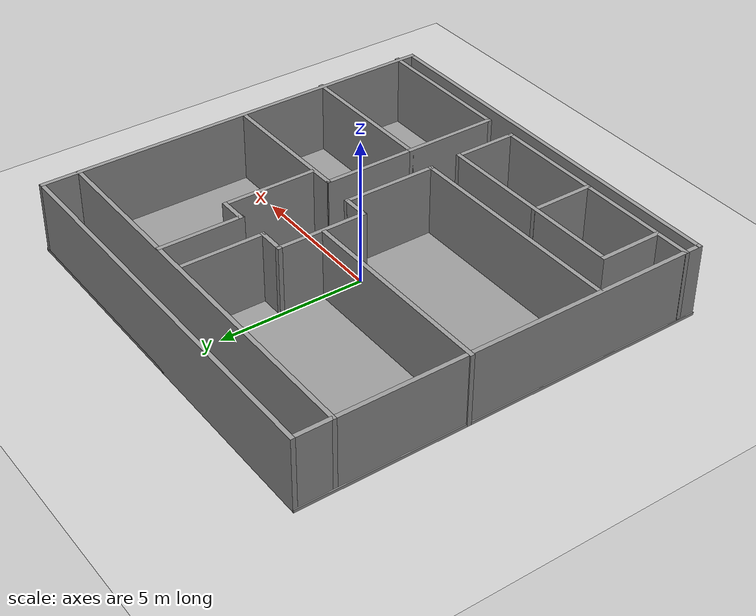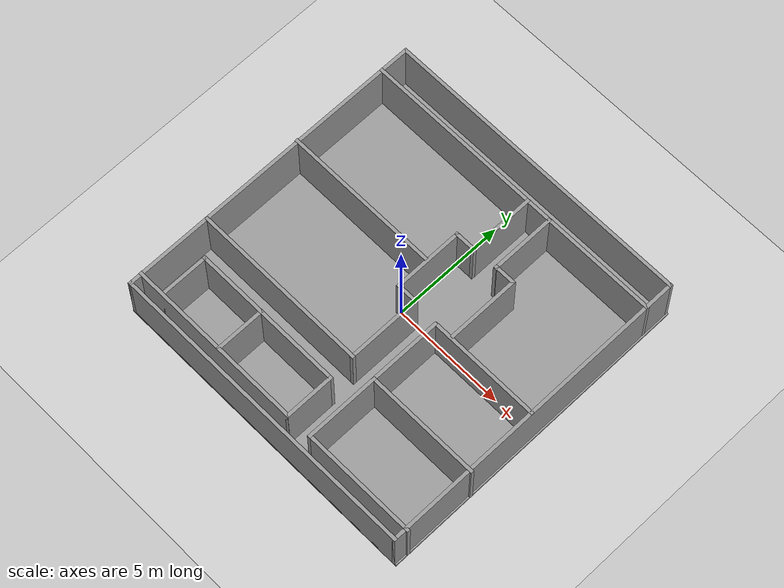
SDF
<sdf version='1.4'>
  <world name='default'>
    <!-- A global light source -->
    <include>
      <uri>model://sun</uri>
    </include>

    <!-- A ground plane -->
    <include>
      <uri>model://ground_plane</uri>
    </include>

    <physics type="ode">
      <real_time_update_rate>1000.0</real_time_update_rate>
      <max_step_size>0.001</max_step_size>
      <real_time_factor>1</real_time_factor>
      <ode>
        <solver>
          <type>quick</type>
          <iters>150</iters>
          <precon_iters>0</precon_iters>
          <sor>1.400000</sor>
          <use_dynamic_moi_rescaling>1</use_dynamic_moi_rescaling>
        </solver>
        <constraints>
          <cfm>0.00001</cfm>
          <erp>0.2</erp>
          <contact_max_correcting_vel>2000.000000</contact_max_correcting_vel>
          <contact_surface_layer>0.01000</contact_surface_layer>
        </constraints>
      </ode>
    </physics>

    <!-- Load world -->
    <include>
      <uri>model://Cedri</uri>
    </include>

    <scene>
      <ambient>0.4 0.4 0.4 1</ambient>
      <background>0.7 0.7 0.7 1</background>
      <shadows>true</shadows>
    </scene>

    <gui fullscreen='0'>
      <camera name='user_camera'>
        <pose>0.8 0.0 12.0 0 1.5708 0</pose>
        <view_controller>orbit</view_controller>
      </camera>
    </gui>
  </world>
</sdf>

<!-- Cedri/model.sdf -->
<sdf version='1.7'>
  <model name='Cedri'>
    <pose>-0.021501 -0.006685 0 0 -0 0</pose>
    <link name='Floor_1'>
      <collision name='Floor_1_Collision'>
        <geometry>
          <box>
            <size>14.0992 14.2194 0.1</size>
          </box>
        </geometry>
        <pose>0 0 0.05 0 -0 0</pose>
      </collision>
      <visual name='Floor_1_Visual'>
        <pose>0 0 0.05 0 -0 0</pose>
        <geometry>
          <box>
            <size>14.0992 14.2194 0.1</size>
          </box>
        </geometry>
        <material>
          <script>
            <uri>file://media/materials/scripts/gazebo.material</uri>
            <name>Gazebo/Grey</name>
          </script>
          <ambient>1 1 1 1</ambient>
        </material>
        <meta>
          <layer>0</layer>
        </meta>
      </visual>
      <pose>-0 0 0 0 -0 0</pose>
    </link>
    <link name='Wall_13'>
      <collision name='Wall_13_Collision'>
        <geometry>
          <box>
            <size>14.2194 0.15 2.5</size>
          </box>
        </geometry>
        <pose>0 0 1.25 0 -0 0</pose>
      </collision>
      <visual name='Wall_13_Visual'>
        <pose>0 0 1.25 0 -0 0</pose>
        <geometry>
          <box>
            <size>14.2194 0.15 2.5</size>
          </box>
        </geometry>
        <material>
          <script>
            <uri>file://media/materials/scripts/gazebo.material</uri>
            <name>Gazebo/Grey</name>
          </script>
          <ambient>1 1 1 1</ambient>
        </material>
        <meta>
          <layer>0</layer>
        </meta>
      </visual>
      <pose>-6.93808 0 0 0 -0 -1.5708</pose>
    </link>
    <link name='Wall_14'>
      <collision name='Wall_14_Collision'>
        <geometry>
          <box>
            <size>14 0.15 2.5</size>
          </box>
        </geometry>
        <pose>0 0 1.25 0 -0 0</pose>
      </collision>
      <visual name='Wall_14_Visual'>
        <pose>0 0 1.25 0 -0 0</pose>
        <geometry>
          <box>
            <size>14 0.15 2.5</size>
          </box>
        </geometry>
        <material>
          <script>
            <uri>file://media/materials/scripts/gazebo.material</uri>
            <name>Gazebo/Grey</name>
          </script>
          <ambient>1 1 1 1</ambient>
        </material>
        <meta>
          <layer>0</layer>
        </meta>
      </visual>
      <pose>-0.013079 -7.0347 0 0 -0 0</pose>
    </link>
    <link name='Wall_15'>
      <collision name='Wall_15_Collision'>
        <geometry>
          <box>
            <size>14.2194 0.15 2.5</size>
          </box>
        </geometry>
        <pose>0 0 1.25 0 -0 0</pose>
      </collision>
      <visual name='Wall_15_Visual'>
        <pose>0 0 1.25 0 -0 0</pose>
        <geometry>
          <box>
            <size>14.2194 0.15 2.5</size>
          </box>
        </geometry>
        <material>
          <script>
            <uri>file://media/materials/scripts/gazebo.material</uri>
            <name>Gazebo/Grey</name>
          </script>
          <ambient>1 1 1 1</ambient>
        </material>
        <meta>
          <layer>0</layer>
        </meta>
      </visual>
      <pose>6.91192 0 0 0 -0 1.5708</pose>
    </link>
    <link name='Wall_16'>
      <collision name='Wall_16_Collision'>
        <geometry>
          <box>
            <size>14 0.15 2.5</size>
          </box>
        </geometry>
        <pose>0 0 1.25 0 -0 0</pose>
      </collision>
      <visual name='Wall_16_Visual'>
        <pose>0 0 1.25 0 -0 0</pose>
        <geometry>
          <box>
            <size>14 0.15 2.5</size>
          </box>
        </geometry>
        <material>
          <script>
            <uri>file://media/materials/scripts/gazebo.material</uri>
            <name>Gazebo/Grey</name>
          </script>
          <ambient>1 1 1 1</ambient>
        </material>
        <meta>
          <layer>0</layer>
        </meta>
      </visual>
      <pose>-0.013079 7.0347 0 0 -0 3.14159</pose>
    </link>
    <link name='Wall_18'>
      <collision name='Wall_18_Collision'>
        <geometry>
          <box>
            <size>14 0.15 2.5</size>
          </box>
        </geometry>
        <pose>0 0 1.25 0 -0 0</pose>
      </collision>
      <visual name='Wall_18_Visual'>
        <pose>0 0 1.25 0 -0 0</pose>
        <geometry>
          <box>
            <size>14 0.15 2.5</size>
          </box>
        </geometry>
        <material>
          <script>
            <uri>file://media/materials/scripts/gazebo.material</uri>
            <name>Gazebo/Grey</name>
          </script>
          <ambient>1 1 1 1</ambient>
        </material>
        <meta>
          <layer>0</layer>
        </meta>
      </visual>
      <pose>-0.013079 5.78058 0 0 -0 0</pose>
    </link>
    <link name='Wall_21'>
      <collision name='Wall_21_Collision'>
        <geometry>
          <box>
            <size>3 0.15 2.5</size>
          </box>
        </geometry>
        <pose>0 0 1.25 0 -0 0</pose>
      </collision>
      <visual name='Wall_21_Visual'>
        <pose>0 0 1.25 0 -0 0</pose>
        <geometry>
          <box>
            <size>3 0.15 2.5</size>
          </box>
        </geometry>
        <material>
          <script>
            <uri>file://media/materials/scripts/gazebo.material</uri>
            <name>Gazebo/Grey</name>
          </script>
          <ambient>1 1 1 1</ambient>
        </material>
        <meta>
          <layer>0</layer>
        </meta>
      </visual>
      <pose>0.838036 4.34811 0 0 -0 -1.5708</pose>
    </link>
    <link name='Wall_22'>
      <collision name='Wall_22_Collision'>
        <geometry>
          <box>
            <size>1 0.15 2.5</size>
          </box>
        </geometry>
        <pose>0 0 1.25 0 -0 0</pose>
      </collision>
      <visual name='Wall_22_Visual'>
        <pose>0 0 1.25 0 -0 0</pose>
        <geometry>
          <box>
            <size>1 0.15 2.5</size>
          </box>
        </geometry>
        <material>
          <script>
            <uri>file://media/materials/scripts/gazebo.material</uri>
            <name>Gazebo/Grey</name>
          </script>
          <ambient>1 1 1 1</ambient>
        </material>
        <meta>
          <layer>0</layer>
        </meta>
      </visual>
      <pose>0.413036 2.92312 0 0 -0 3.14159</pose>
    </link>
    <link name='Wall_23'>
      <collision name='Wall_23_Collision'>
        <geometry>
          <box>
            <size>3.15276 0.15 2.5</size>
          </box>
        </geometry>
        <pose>0 0 1.25 0 -0 0</pose>
      </collision>
      <visual name='Wall_23_Visual'>
        <pose>0 0 1.25 0 -0 0</pose>
        <geometry>
          <box>
            <size>3.15276 0.15 2.5</size>
          </box>
        </geometry>
        <material>
          <script>
            <uri>file://media/materials/scripts/gazebo.material</uri>
            <name>Gazebo/Grey</name>
          </script>
          <ambient>1 1 1 1</ambient>
        </material>
        <meta>
          <layer>0</layer>
        </meta>
      </visual>
      <pose>-0.011964 1.42181 0 0 -0 -1.5708</pose>
    </link>
    <link name='Wall_24'>
      <collision name='Wall_24_Collision'>
        <geometry>
          <box>
            <size>1 0.15 2.5</size>
          </box>
        </geometry>
        <pose>0 0 1.25 0 -0 0</pose>
      </collision>
      <visual name='Wall_24_Visual'>
        <pose>0 0 1.25 0 -0 0</pose>
        <geometry>
          <box>
            <size>1 0.15 2.5</size>
          </box>
        </geometry>
        <material>
          <script>
            <uri>file://media/materials/scripts/gazebo.material</uri>
            <name>Gazebo/Grey</name>
          </script>
          <ambient>1 1 1 1</ambient>
        </material>
        <meta>
          <layer>0</layer>
        </meta>
      </visual>
      <pose>0.413036 -0.07949 0 0 -0 0</pose>
    </link>
    <link name='Wall_26'>
      <collision name='Wall_26_Collision'>
        <geometry>
          <box>
            <size>3.31585 0.15 2.5</size>
          </box>
        </geometry>
        <pose>0 0 1.25 0 -0 0</pose>
      </collision>
      <visual name='Wall_26_Visual'>
        <pose>0 0 1.25 0 -0 0</pose>
        <geometry>
          <box>
            <size>3.31585 0.15 2.5</size>
          </box>
        </geometry>
        <material>
          <script>
            <uri>file://media/materials/scripts/gazebo.material</uri>
            <name>Gazebo/Grey</name>
          </script>
          <ambient>1 1 1 1</ambient>
        </material>
        <meta>
          <layer>0</layer>
        </meta>
      </visual>
      <pose>0.838036 -1.66234 0 0 -0 -1.5708</pose>
    </link>
    <link name='Wall_27'>
      <collision name='Wall_27_Collision'>
        <geometry>
          <box>
            <size>7.9 0.15 2.5</size>
          </box>
        </geometry>
        <pose>0 0 1.25 0 -0 0</pose>
      </collision>
      <visual name='Wall_27_Visual'>
        <pose>0 0 1.25 0 -0 0</pose>
        <geometry>
          <box>
            <size>7.9 0.15 2.5</size>
          </box>
        </geometry>
        <material>
          <script>
            <uri>file://media/materials/scripts/gazebo.material</uri>
            <name>Gazebo/Grey</name>
          </script>
          <ambient>1 1 1 1</ambient>
        </material>
        <meta>
          <layer>0</layer>
        </meta>
      </visual>
      <pose>-3.03696 -3.2452 0 0 -0 3.14159</pose>
    </link>
    <link name='Wall_29'>
      <collision name='Wall_29_Collision'>
        <geometry>
          <box>
            <size>7 0.15 2.5</size>
          </box>
        </geometry>
        <pose>0 0 1.25 0 -0 0</pose>
      </collision>
      <visual name='Wall_29_Visual'>
        <pose>0 0 1.25 0 -0 0</pose>
        <geometry>
          <box>
            <size>7 0.15 2.5</size>
          </box>
        </geometry>
        <material>
          <script>
            <uri>file://media/materials/scripts/gazebo.material</uri>
            <name>Gazebo/Grey</name>
          </script>
          <ambient>1 1 1 1</ambient>
        </material>
        <meta>
          <layer>0</layer>
        </meta>
      </visual>
      <pose>-3.54961 1.38625 0 0 -0 0</pose>
    </link>
    <link name='Wall_32'>
      <collision name='Wall_32_Collision'>
        <geometry>
          <box>
            <size>8 0.15 2.5</size>
          </box>
        </geometry>
        <pose>0 0 1.25 0 -0 0</pose>
      </collision>
      <visual name='Wall_32_Visual'>
        <pose>0 0 1.25 0 -0 0</pose>
        <geometry>
          <box>
            <size>8 0.15 2.5</size>
          </box>
        </geometry>
        <material>
          <script>
            <uri>file://media/materials/scripts/gazebo.material</uri>
            <name>Gazebo/Grey</name>
          </script>
          <ambient>1 1 1 1</ambient>
        </material>
        <meta>
          <layer>0</layer>
        </meta>
      </visual>
      <pose>-3.02648 -6.50129 0 0 -0 0</pose>
    </link>
    <link name='Wall_33'>
      <collision name='Wall_33_Collision'>
        <geometry>
          <box>
            <size>2.25 0.15 2.5</size>
          </box>
        </geometry>
        <pose>0 0 1.25 0 -0 0</pose>
      </collision>
      <visual name='Wall_33_Visual'>
        <pose>0 0 1.25 0 -0 0</pose>
        <geometry>
          <box>
            <size>2.25 0.15 2.5</size>
          </box>
        </geometry>
        <material>
          <script>
            <uri>file://media/materials/scripts/gazebo.material</uri>
            <name>Gazebo/Grey</name>
          </script>
          <ambient>1 1 1 1</ambient>
        </material>
        <meta>
          <layer>0</layer>
        </meta>
      </visual>
      <pose>0.898517 -5.45129 0 0 -0 1.5708</pose>
    </link>
    <link name='Wall_34'>
      <collision name='Wall_34_Collision'>
        <geometry>
          <box>
            <size>6.84252 0.15 2.5</size>
          </box>
        </geometry>
        <pose>0 0 1.25 0 -0 0</pose>
      </collision>
      <visual name='Wall_34_Visual'>
        <pose>0 0 1.25 0 -0 0</pose>
        <geometry>
          <box>
            <size>6.84252 0.15 2.5</size>
          </box>
        </geometry>
        <material>
          <script>
            <uri>file://media/materials/scripts/gazebo.material</uri>
            <name>Gazebo/Grey</name>
          </script>
          <ambient>1 1 1 1</ambient>
        </material>
        <meta>
          <layer>0</layer>
        </meta>
      </visual>
      <pose>-2.44774 -4.40129 0 0 -0 3.14159</pose>
    </link>
    <link name='Wall_35'>
      <collision name='Wall_35_Collision'>
        <geometry>
          <box>
            <size>2.25 0.15 2.5</size>
          </box>
        </geometry>
        <pose>0 0 1.25 0 -0 0</pose>
      </collision>
      <visual name='Wall_35_Visual'>
        <pose>0 0 1.25 0 -0 0</pose>
        <geometry>
          <box>
            <size>2.25 0.15 2.5</size>
          </box>
        </geometry>
        <material>
          <script>
            <uri>file://media/materials/scripts/gazebo.material</uri>
            <name>Gazebo/Grey</name>
          </script>
          <ambient>1 1 1 1</ambient>
        </material>
        <meta>
          <layer>0</layer>
        </meta>
      </visual>
      <pose>-5.79401 -5.45129 0 0 -0 -1.5708</pose>
    </link>
    <link name='Wall_37'>
      <collision name='Wall_37_Collision'>
        <geometry>
          <box>
            <size>2.25 0.15 2.5</size>
          </box>
        </geometry>
        <pose>0 0 1.25 0 -0 0</pose>
      </collision>
      <visual name='Wall_37_Visual'>
        <pose>0 0 1.25 0 -0 0</pose>
        <geometry>
          <box>
            <size>2.25 0.15 2.5</size>
          </box>
        </geometry>
        <material>
          <script>
            <uri>file://media/materials/scripts/gazebo.material</uri>
            <name>Gazebo/Grey</name>
          </script>
          <ambient>1 1 1 1</ambient>
        </material>
        <meta>
          <layer>0</layer>
        </meta>
      </visual>
      <pose>-2.76484 -5.4464 0 0 -0 -1.5708</pose>
    </link>
    <link name='Wall_39'>
      <collision name='Wall_39_Collision'>
        <geometry>
          <box>
            <size>2.93354 0.15 2.5</size>
          </box>
        </geometry>
        <pose>0 0 1.25 0 -0 0</pose>
      </collision>
      <visual name='Wall_39_Visual'>
        <pose>0 0 1.25 0 -0 0</pose>
        <geometry>
          <box>
            <size>2.93354 0.15 2.5</size>
          </box>
        </geometry>
        <material>
          <script>
            <uri>file://media/materials/scripts/gazebo.material</uri>
            <name>Gazebo/Grey</name>
          </script>
          <ambient>1 1 1 1</ambient>
        </material>
        <meta>
          <layer>0</layer>
        </meta>
      </visual>
      <pose>1.95782 4.36525 0 0 -0 -1.5708</pose>
    </link>
    <link name='Wall_40'>
      <collision name='Wall_40_Collision'>
        <geometry>
          <box>
            <size>1 0.15 2.5</size>
          </box>
        </geometry>
        <pose>0 0 1.25 0 -0 0</pose>
      </collision>
      <visual name='Wall_40_Visual'>
        <pose>0 0 1.25 0 -0 0</pose>
        <geometry>
          <box>
            <size>1 0.15 2.5</size>
          </box>
        </geometry>
        <material>
          <script>
            <uri>file://media/materials/scripts/gazebo.material</uri>
            <name>Gazebo/Grey</name>
          </script>
          <ambient>1 1 1 1</ambient>
        </material>
        <meta>
          <layer>0</layer>
        </meta>
      </visual>
      <pose>2.38282 3.00407 0 0 -0 0</pose>
    </link>
    <link name='Wall_42'>
      <collision name='Wall_42_Collision'>
        <geometry>
          <box>
            <size>5 0.15 2.5</size>
          </box>
        </geometry>
        <pose>0 0 1.25 0 -0 0</pose>
      </collision>
      <visual name='Wall_42_Visual'>
        <pose>0 0 1.25 0 -0 0</pose>
        <geometry>
          <box>
            <size>5 0.15 2.5</size>
          </box>
        </geometry>
        <material>
          <script>
            <uri>file://media/materials/scripts/gazebo.material</uri>
            <name>Gazebo/Grey</name>
          </script>
          <ambient>1 1 1 1</ambient>
        </material>
        <meta>
          <layer>0</layer>
        </meta>
      </visual>
      <pose>4.48282 -0.192979 0 0 -0 0</pose>
    </link>
    <link name='Wall_44'>
      <collision name='Wall_44_Collision'>
        <geometry>
          <box>
            <size>5.10409 0.15 2.5</size>
          </box>
        </geometry>
        <pose>0 0 1.25 0 -0 0</pose>
      </collision>
      <visual name='Wall_44_Visual'>
        <pose>0 0 1.25 0 -0 0</pose>
        <geometry>
          <box>
            <size>5.10409 0.15 2.5</size>
          </box>
        </geometry>
        <material>
          <script>
            <uri>file://media/materials/scripts/gazebo.material</uri>
            <name>Gazebo/Grey</name>
          </script>
          <ambient>1 1 1 1</ambient>
        </material>
        <meta>
          <layer>0</layer>
        </meta>
      </visual>
      <pose>4.49757 -6.47907 0 0 -0 3.14159</pose>
    </link>
    <link name='Wall_45'>
      <collision name='Wall_45_Collision'>
        <geometry>
          <box>
            <size>3.31118 0.15 2.5</size>
          </box>
        </geometry>
        <pose>0 0 1.25 0 -0 0</pose>
      </collision>
      <visual name='Wall_45_Visual'>
        <pose>0 0 1.25 0 -0 0</pose>
        <geometry>
          <box>
            <size>3.31118 0.15 2.5</size>
          </box>
        </geometry>
        <material>
          <script>
            <uri>file://media/materials/scripts/gazebo.material</uri>
            <name>Gazebo/Grey</name>
          </script>
          <ambient>1 1 1 1</ambient>
        </material>
        <meta>
          <layer>0</layer>
        </meta>
      </visual>
      <pose>2.02053 -4.89848 0 0 -0 1.5708</pose>
    </link>
    <link name='Wall_46'>
      <collision name='Wall_46_Collision'>
        <geometry>
          <box>
            <size>5.10409 0.15 2.5</size>
          </box>
        </geometry>
        <pose>0 0 1.25 0 -0 0</pose>
      </collision>
      <visual name='Wall_46_Visual'>
        <pose>0 0 1.25 0 -0 0</pose>
        <geometry>
          <box>
            <size>5.10409 0.15 2.5</size>
          </box>
        </geometry>
        <material>
          <script>
            <uri>file://media/materials/scripts/gazebo.material</uri>
            <name>Gazebo/Grey</name>
          </script>
          <ambient>1 1 1 1</ambient>
        </material>
        <meta>
          <layer>0</layer>
        </meta>
      </visual>
      <pose>4.49757 -3.31789 0 0 -0 0</pose>
    </link>
    <link name='Wall_51'>
      <collision name='Wall_51_Collision'>
        <geometry>
          <box>
            <size>3.25 0.15 2.5</size>
          </box>
        </geometry>
        <pose>0 0 1.25 0 -0 0</pose>
      </collision>
      <visual name='Wall_51_Visual'>
        <pose>0 0 1.25 0 -0 0</pose>
        <geometry>
          <box>
            <size>3.25 0.15 2.5</size>
          </box>
        </geometry>
        <material>
          <script>
            <uri>file://media/materials/scripts/gazebo.material</uri>
            <name>Gazebo/Grey</name>
          </script>
          <ambient>1 1 1 1</ambient>
        </material>
        <meta>
          <layer>0</layer>
        </meta>
      </visual>
      <pose>2.02053 -1.76789 0 0 -0 1.5708</pose>
    </link>
    <link name='Wall_56'>
      <collision name='Wall_56_Collision'>
        <geometry>
          <box>
            <size>3.25 0.15 2.5</size>
          </box>
        </geometry>
        <pose>0 0 1.25 0 -0 0</pose>
      </collision>
      <visual name='Wall_56_Visual'>
        <pose>0 0 1.25 0 -0 0</pose>
        <geometry>
          <box>
            <size>3.25 0.15 2.5</size>
          </box>
        </geometry>
        <material>
          <script>
            <uri>file://media/materials/scripts/gazebo.material</uri>
            <name>Gazebo/Grey</name>
          </script>
          <ambient>1 1 1 1</ambient>
        </material>
        <meta>
          <layer>0</layer>
        </meta>
      </visual>
      <pose>2.80782 1.45407 0 0 -0 -1.5708</pose>
    </link>
    <static>1</static>
  </model>
</sdf>
